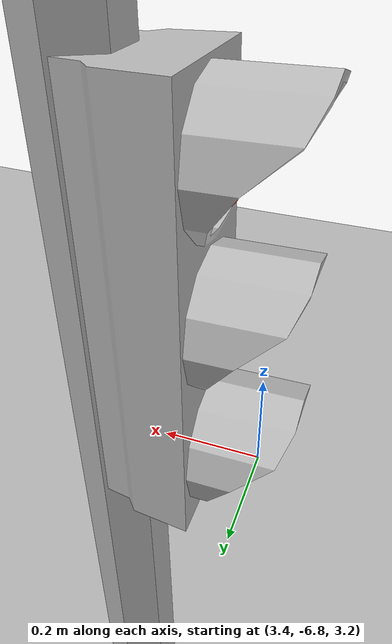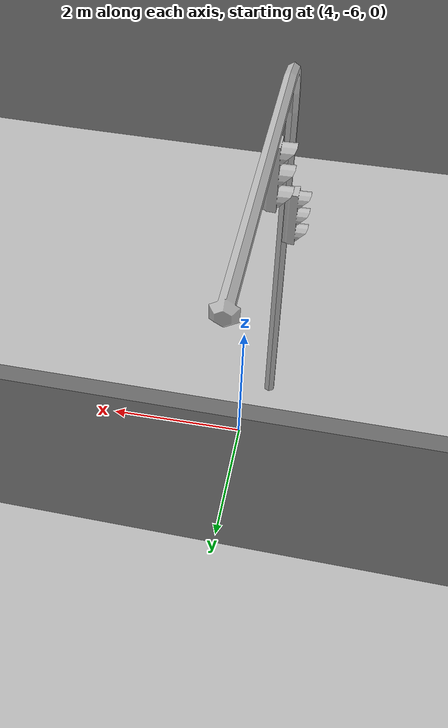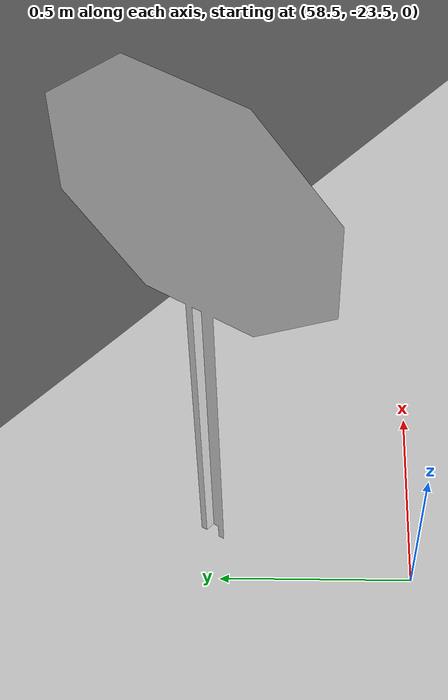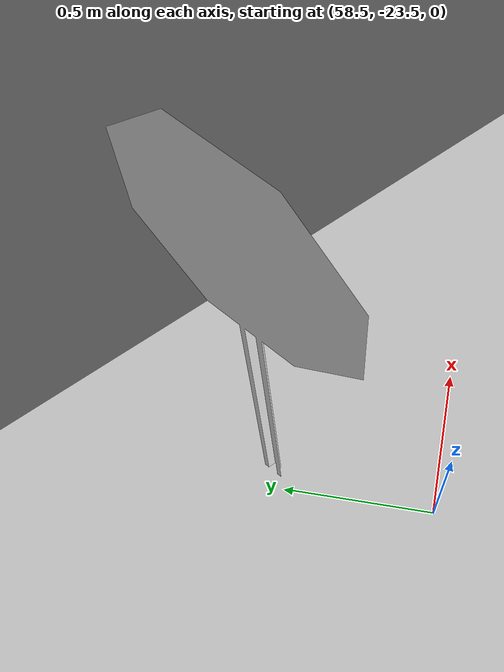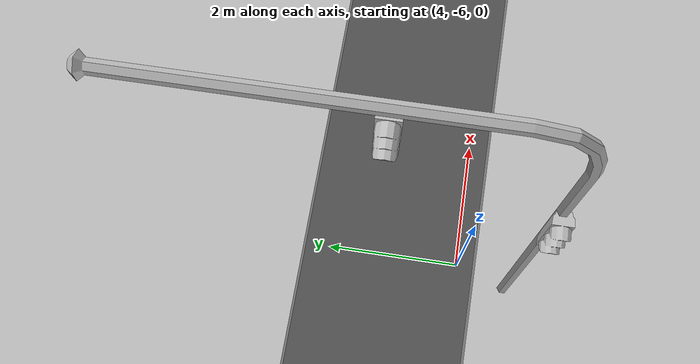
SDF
<sdf version="1.7">
 <world name="default">
  <light name="sun" type="directional">
   <pose>0 0 100 0 -0 0</pose>
   <diffuse>0.8 0.8 0.8 1</diffuse>
   <specular>0.1 0.1 0.1 1</specular>
   <attenuation>
    <range>1000</range>
    <constant>0.9</constant>
    <linear>0.01</linear>
    <quadratic>0.001</quadratic>
   </attenuation>
   <direction>-0.5 0.5 -1</direction>
   <spot><inner_angle>0</inner_angle><outer_angle>0</outer_angle><falloff>0</falloff></spot>
  </light>
  <model name="ground_plane">
   <static>1</static>
   <link name="link">
    <collision name="collision">
     <geometry><plane><normal>0 0 1</normal><size>1000 1000</size></plane></geometry>
     <surface><friction><ode><mu>100</mu><mu2>50</mu2></ode></friction></surface>
    </collision>
    <visual name="visual">
     <cast_shadows>0</cast_shadows>
     <geometry><plane><normal>0 0 1</normal><size>1000 1000</size></plane></geometry>
     <material>
      <script>
       <uri>model://asphalt_plane/materials/scripts</uri>
       <uri>model://asphalt_plane/materials/textures</uri>
       <name>vrc/asphalt</name>
      </script>
     </material>
    </visual>
   </link>
  </model>
  <gravity>0 0 -9.8</gravity>
  <magnetic_field>6e-06 2.3e-05 -4.2e-05</magnetic_field>
  <atmosphere type="adiabatic"/>
  <physics name="default_physics" default="0" type="ode">
   <max_step_size>0.001</max_step_size>
   <real_time_factor>1</real_time_factor>
   <real_time_update_rate>1000</real_time_update_rate>
  </physics>
  <scene><ambient>0.4 0.4 0.4 1</ambient><background>0.7 0.7 0.7 1</background><shadows>1</shadows></scene>
  <spherical_coordinates>
   <surface_model>EARTH_WGS84</surface_model>
   <latitude_deg>0</latitude_deg>
   <longitude_deg>0</longitude_deg>
   <elevation>0</elevation>
   <heading_deg>0</heading_deg>
  </spherical_coordinates>
  <model name="monza_track">
   <pose>37.17 -29.31 0 0 0 -1.48</pose>
   <static>1</static>
   <link name="body">
    <collision name="collision">
     <geometry><mesh><uri>model://monza_track/monza_track.stl</uri><scale>1 1 1</scale></mesh></geometry>
    </collision>
    <visual name="visual">
     <geometry><mesh><uri>model://monza_track/monza_track.stl</uri><scale>1 1 1</scale></mesh></geometry>
    </visual>
   </link>
  </model>
  <audio><device>default</device></audio>
  <model name="stop_light_post">
   <static>1</static>
   <link name="link">
    <collision name="post">
     <geometry>
      <mesh><uri>model://stop_light_post/meshes/stop_light_post.obj</uri><scale>0.01 0.01 0.01</scale></mesh>
     </geometry>
    </collision>
    <visual name="post">
     <geometry>
      <mesh><uri>model://stop_light_post/meshes/stop_light_post.obj</uri><scale>0.01 0.01 0.01</scale></mesh>
     </geometry>
    </visual>
   </link>
   <frame name="right_light::__model__" attached_to="right_light::link">
    <pose relative_to="__model__">0 -0.05 4 0 -0 0</pose>
   </frame>
   <static>1</static>
   <link name="right_light::link">
    <collision name="collision">
     <geometry>
      <mesh><uri>model://stop_light/meshes/stop_light.obj</uri><scale>0.01 0.01 0.01</scale></mesh>
     </geometry>
    </collision>
    <visual name="frame">
     <geometry>
      <mesh><uri>model://stop_light/meshes/stop_light.obj</uri><scale>0.01 0.01 0.01</scale></mesh>
     </geometry>
    </visual>
    <visual name="red">
     <pose>-0.001123 -0.082251 -0.147514 0 -0 0</pose>
     <geometry><sphere><radius>0.1012</radius></sphere></geometry>
     <material>
      <script>
       <uri>model://stop_light/materials/scripts/</uri>
       <uri>model://stop_light/materials/textures/</uri>
       <name>StopLight/Light</name>
      </script>
      <ambient>1 0 0 1</ambient>
      <specular>1 0 0 1</specular>
     </material>
    </visual>
    <visual name="yellow">
     <pose>-0.001123 -0.082251 -0.402 0 -0 0</pose>
     <geometry><sphere><radius>0.1012</radius></sphere></geometry>
     <material>
      <script>
       <uri>model://stop_light/materials/scripts/</uri>
       <uri>model://stop_light/materials/textures/</uri>
       <name>StopLight/Light</name>
      </script>
      <ambient>1 1 0 1</ambient>
      <specular>1 1 0 1</specular>
     </material>
    </visual>
    <visual name="green">
     <pose>-0.001123 -0.082251 -0.655 0 -0 0</pose>
     <geometry><sphere><radius>0.1012</radius></sphere></geometry>
     <material>
      <script>
       <uri>model://stop_light/materials/scripts/</uri>
       <uri>model://stop_light/materials/textures/</uri>
       <name>StopLight/Light</name>
      </script>
      <ambient>0 1 0 1</ambient>
      <specular>0 1 0 1</specular>
     </material>
    </visual>
    <pose relative_to="right_light::__model__">0 0 0 0 -0 0</pose>
   </link>
   <frame name="center_light::__model__" attached_to="center_light::link">
    <pose relative_to="__model__">-2 0.04 5.82 0 -0 0</pose>
   </frame>
   <static>1</static>
   <link name="center_light::link">
    <collision name="collision">
     <geometry>
      <mesh><uri>model://stop_light/meshes/stop_light.obj</uri><scale>0.01 0.01 0.01</scale></mesh>
     </geometry>
    </collision>
    <visual name="frame">
     <geometry>
      <mesh><uri>model://stop_light/meshes/stop_light.obj</uri><scale>0.01 0.01 0.01</scale></mesh>
     </geometry>
    </visual>
    <visual name="red">
     <pose>-0.001123 -0.082251 -0.147514 0 -0 0</pose>
     <geometry><sphere><radius>0.1012</radius></sphere></geometry>
     <material>
      <script>
       <uri>model://stop_light/materials/scripts/</uri>
       <uri>model://stop_light/materials/textures/</uri>
       <name>StopLight/Light</name>
      </script>
      <ambient>1 0 0 1</ambient>
      <specular>1 0 0 1</specular>
     </material>
    </visual>
    <visual name="yellow">
     <pose>-0.001123 -0.082251 -0.402 0 -0 0</pose>
     <geometry><sphere><radius>0.1012</radius></sphere></geometry>
     <material>
      <script>
       <uri>model://stop_light/materials/scripts/</uri>
       <uri>model://stop_light/materials/textures/</uri>
       <name>StopLight/Light</name>
      </script>
      <ambient>1 1 0 1</ambient>
      <specular>1 1 0 1</specular>
     </material>
    </visual>
    <visual name="green">
     <pose>-0.001123 -0.082251 -0.655 0 -0 0</pose>
     <geometry><sphere><radius>0.1012</radius></sphere></geometry>
     <material>
      <script>
       <uri>model://stop_light/materials/scripts/</uri>
       <uri>model://stop_light/materials/textures/</uri>
       <name>StopLight/Light</name>
      </script>
      <ambient>0 1 0 1</ambient>
      <specular>0 1 0 1</specular>
     </material>
    </visual>
    <pose relative_to="center_light::__model__">0 0 0 0 -0 0</pose>
   </link>
   <pose>3.64702 -6.70311 0 0 0 -1.57</pose>
  </model>
  <model name="Stop Sign">
   <static>1</static>
   <link name="link">
    <collision name="collision">
     <geometry><mesh><uri>model://stop_sign/meshes/stop_sign.dae</uri></mesh></geometry>
    </collision>
    <visual name="visual">
     <geometry><mesh><uri>model://stop_sign/meshes/stop_sign.dae</uri></mesh></geometry>
     <material>
      <script>
       <uri>model://stop_sign/materials/scripts</uri>
       <uri>model://stop_sign/materials/textures</uri>
       <name>StopSign/Diffuse</name>
      </script>
     </material>
    </visual>
   </link>
   <pose>58.4538 -23 0 0 0 -2.1</pose>
  </model>
 </world>
</sdf>
